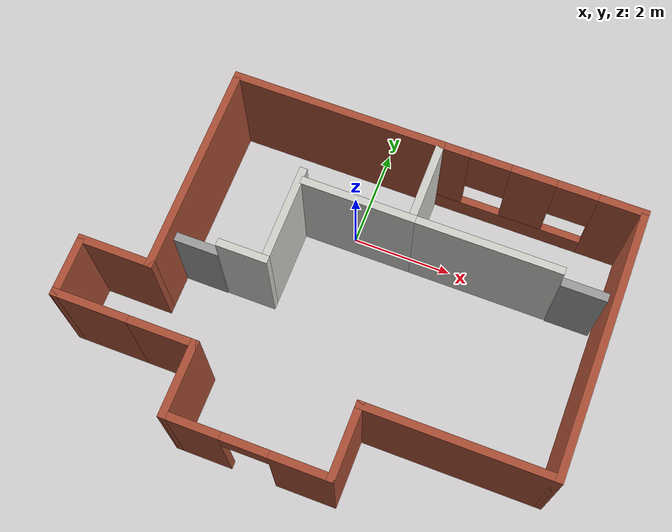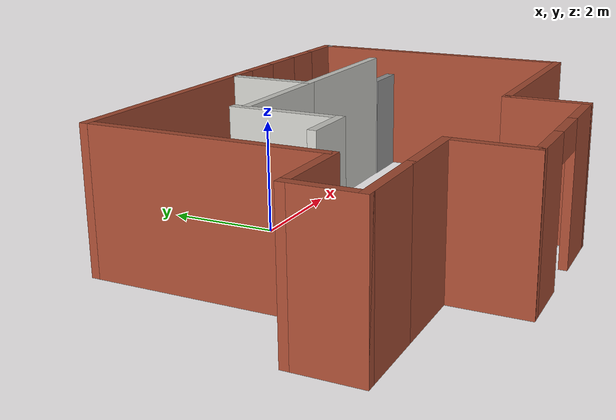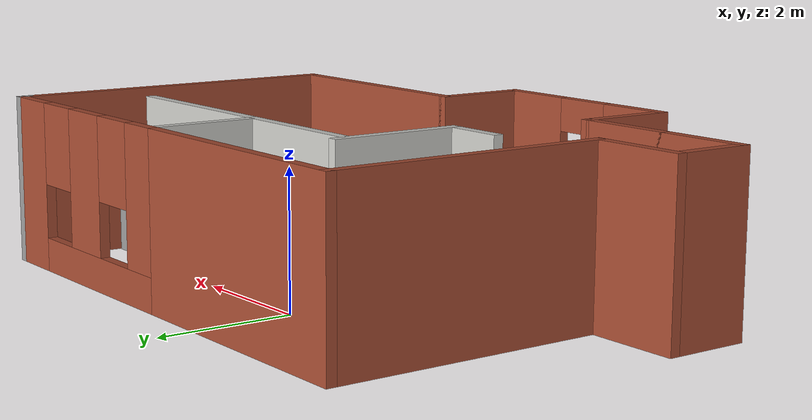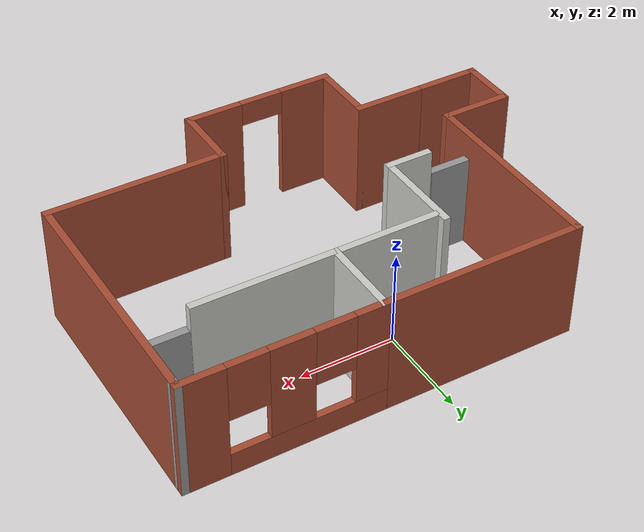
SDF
<?xml version='1.0'?>
<sdf version='1.7'>
  <model name='my_world.world'>
    <pose>0.410865 -1.86702 0 0 -0 0</pose>
    <link name='Door_1'>
      <collision name='Door_1_Collision'>
        <geometry>
          <box>
            <size>0.9 0.17 2</size>
          </box>
        </geometry>
        <pose>0 0 1 0 -0 0</pose>
      </collision>
      <visual name='Door_1_Visual'>
        <pose>0 0 1 0 -0 0</pose>
        <geometry>
          <box>
            <size>0.9 0.17 2</size>
          </box>
        </geometry>
        <material>
          <script>
            <uri>file://media/materials/scripts/gazebo.material</uri>
            <name>Gazebo/Grey</name>
          </script>
        </material>
      </visual>
      <pose>4.14027 1.67101 0 0 -0 0</pose>
    </link>
    <link name='Door_5'>
      <collision name='Door_5_Collision'>
        <geometry>
          <box>
            <size>0.9 0.17 2</size>
          </box>
        </geometry>
        <pose>0 0 1 0 -0 0</pose>
      </collision>
      <visual name='Door_5_Visual'>
        <pose>0 0 1 0 -0 0</pose>
        <geometry>
          <box>
            <size>0.9 0.17 2</size>
          </box>
        </geometry>
        <material>
          <script>
            <uri>file://media/materials/scripts/gazebo.material</uri>
            <name>Gazebo/Grey</name>
          </script>
        </material>
      </visual>
      <pose>-2.84578 -0.011754 0 0 -0 0</pose>
    </link>
    <link name='Wall_38'>
      <collision name='Wall_38_Collision'>
        <geometry>
          <box>
            <size>4.25 0.15 2.5</size>
          </box>
        </geometry>
        <pose>0 0 1.25 0 -0 0</pose>
      </collision>
      <visual name='Wall_38_Visual'>
        <pose>0 0 1.25 0 -0 0</pose>
        <geometry>
          <box>
            <size>4.25 0.15 2.5</size>
          </box>
        </geometry>
        <material>
          <script>
            <uri>file://media/materials/scripts/gazebo.material</uri>
            <name>Gazebo/Bricks</name>
          </script>
          <ambient>1 1 1 1</ambient>
        </material>
        <meta>
          <layer>0</layer>
        </meta>
      </visual>
      <pose>-1.3 3.275 0 0 -0 3.14159</pose>
    </link>
    <link name='Wall_39'>
      <collision name='Wall_39_Collision'>
        <geometry>
          <box>
            <size>4.25 0.15 2.5</size>
          </box>
        </geometry>
        <pose>0 0 1.25 0 -0 0</pose>
      </collision>
      <visual name='Wall_39_Visual'>
        <pose>0 0 1.25 0 -0 0</pose>
        <geometry>
          <box>
            <size>4.25 0.15 2.5</size>
          </box>
        </geometry>
        <material>
          <script>
            <uri>file://media/materials/scripts/gazebo.material</uri>
            <name>Gazebo/Bricks</name>
          </script>
          <ambient>1 1 1 1</ambient>
        </material>
        <meta>
          <layer>0</layer>
        </meta>
      </visual>
      <pose>-3.35 1.225 0 0 -0 -1.5708</pose>
    </link>
    <link name='Wall_40'>
      <collision name='Wall_40_Collision'>
        <geometry>
          <box>
            <size>1.5 0.15 2.5</size>
          </box>
        </geometry>
        <pose>0 0 1.25 0 -0 0</pose>
      </collision>
      <visual name='Wall_40_Visual'>
        <pose>0 0 1.25 0 -0 0</pose>
        <geometry>
          <box>
            <size>1.5 0.15 2.5</size>
          </box>
        </geometry>
        <material>
          <script>
            <uri>file://media/materials/scripts/gazebo.material</uri>
            <name>Gazebo/Bricks</name>
          </script>
          <ambient>1 1 1 1</ambient>
        </material>
        <meta>
          <layer>0</layer>
        </meta>
      </visual>
      <pose>-4.025 -0.825 0 0 -0 3.14159</pose>
    </link>
    <link name='Wall_41'>
      <collision name='Wall_41_Collision'>
        <geometry>
          <box>
            <size>1.25 0.15 2.5</size>
          </box>
        </geometry>
        <pose>0 0 1.25 0 -0 0</pose>
      </collision>
      <visual name='Wall_41_Visual'>
        <pose>0 0 1.25 0 -0 0</pose>
        <geometry>
          <box>
            <size>1.25 0.15 2.5</size>
          </box>
        </geometry>
        <material>
          <script>
            <uri>file://media/materials/scripts/gazebo.material</uri>
            <name>Gazebo/Bricks</name>
          </script>
          <ambient>1 1 1 1</ambient>
        </material>
        <meta>
          <layer>0</layer>
        </meta>
      </visual>
      <pose>-4.7 -1.375 0 0 -0 -1.5708</pose>
    </link>
    <link name='Wall_42'>
      <collision name='Wall_42_Collision'>
        <geometry>
          <box>
            <size>1.5 0.15 2.5</size>
          </box>
        </geometry>
        <pose>0 0 1.25 0 -0 0</pose>
      </collision>
      <visual name='Wall_42_Visual'>
        <pose>0 0 1.25 0 -0 0</pose>
        <geometry>
          <box>
            <size>1.5 0.15 2.5</size>
          </box>
        </geometry>
        <material>
          <script>
            <uri>file://media/materials/scripts/gazebo.material</uri>
            <name>Gazebo/Bricks</name>
          </script>
          <ambient>1 1 1 1</ambient>
        </material>
        <meta>
          <layer>0</layer>
        </meta>
      </visual>
      <pose>-4.025 -1.925 0 0 -0 0</pose>
    </link>
    <link name='Wall_43'>
      <collision name='Wall_43_Collision'>
        <geometry>
          <box>
            <size>1.5 0.15 2.5</size>
          </box>
        </geometry>
        <pose>0 0 1.25 0 -0 0</pose>
      </collision>
      <visual name='Wall_43_Visual'>
        <pose>0 0 1.25 0 -0 0</pose>
        <geometry>
          <box>
            <size>1.5 0.15 2.5</size>
          </box>
        </geometry>
        <material>
          <script>
            <uri>file://media/materials/scripts/gazebo.material</uri>
            <name>Gazebo/Bricks</name>
          </script>
          <ambient>1 1 1 1</ambient>
        </material>
        <meta>
          <layer>0</layer>
        </meta>
      </visual>
      <pose>-2.675 -1.925 0 0 -0 0</pose>
    </link>
    <link name='Wall_44'>
      <collision name='Wall_44_Collision'>
        <geometry>
          <box>
            <size>1.5 0.15 2.5</size>
          </box>
        </geometry>
        <pose>0 0 1.25 0 -0 0</pose>
      </collision>
      <visual name='Wall_44_Visual'>
        <pose>0 0 1.25 0 -0 0</pose>
        <geometry>
          <box>
            <size>1.5 0.15 2.5</size>
          </box>
        </geometry>
        <material>
          <script>
            <uri>file://media/materials/scripts/gazebo.material</uri>
            <name>Gazebo/Bricks</name>
          </script>
          <ambient>1 1 1 1</ambient>
        </material>
        <meta>
          <layer>0</layer>
        </meta>
      </visual>
      <pose>-2 -2.6 0 0 -0 -1.5708</pose>
    </link>
    <link name='Wall_45'>
      <pose>-0.45 -3.275 0 0 -0 0</pose>
      <visual name='Wall_45_Visual_0'>
        <pose>-1.05573 0 1.25 0 -0 0</pose>
        <geometry>
          <box>
            <size>1.13854 0.15 2.5</size>
          </box>
        </geometry>
        <material>
          <script>
            <uri>file://media/materials/scripts/gazebo.material</uri>
            <name>Gazebo/Bricks</name>
          </script>
          <ambient>1 1 1 1</ambient>
        </material>
        <meta>
          <layer>0</layer>
        </meta>
      </visual>
      <collision name='Wall_45_Collision_0'>
        <geometry>
          <box>
            <size>1.13854 0.15 2.5</size>
          </box>
        </geometry>
        <pose>-1.05573 0 1.25 0 -0 0</pose>
      </collision>
      <visual name='Wall_45_Visual_1'>
        <pose>1.01927 0 1.25 0 -0 0</pose>
        <geometry>
          <box>
            <size>1.21146 0.15 2.5</size>
          </box>
        </geometry>
        <material>
          <script>
            <uri>file://media/materials/scripts/gazebo.material</uri>
            <name>Gazebo/Bricks</name>
          </script>
          <ambient>1 1 1 1</ambient>
        </material>
        <meta>
          <layer>0</layer>
        </meta>
      </visual>
      <collision name='Wall_45_Collision_1'>
        <geometry>
          <box>
            <size>1.21146 0.15 2.5</size>
          </box>
        </geometry>
        <pose>1.01927 0 1.25 0 -0 0</pose>
      </collision>
      <visual name='Wall_45_Visual_2'>
        <pose>-0.036456 0 2.25 0 -0 0</pose>
        <geometry>
          <box>
            <size>0.9 0.15 0.5</size>
          </box>
        </geometry>
        <material>
          <script>
            <uri>file://media/materials/scripts/gazebo.material</uri>
            <name>Gazebo/Bricks</name>
          </script>
          <ambient>1 1 1 1</ambient>
        </material>
        <meta>
          <layer>0</layer>
        </meta>
      </visual>
      <collision name='Wall_45_Collision_2'>
        <geometry>
          <box>
            <size>0.9 0.15 0.5</size>
          </box>
        </geometry>
        <pose>-0.036456 0 2.25 0 -0 0</pose>
      </collision>
    </link>
    <link name='Wall_46'>
      <collision name='Wall_46_Collision'>
        <geometry>
          <box>
            <size>1.5 0.15 2.5</size>
          </box>
        </geometry>
        <pose>0 0 1.25 0 -0 0</pose>
      </collision>
      <visual name='Wall_46_Visual'>
        <pose>0 0 1.25 0 -0 0</pose>
        <geometry>
          <box>
            <size>1.5 0.15 2.5</size>
          </box>
        </geometry>
        <material>
          <script>
            <uri>file://media/materials/scripts/gazebo.material</uri>
            <name>Gazebo/Bricks</name>
          </script>
          <ambient>1 1 1 1</ambient>
        </material>
        <meta>
          <layer>0</layer>
        </meta>
      </visual>
      <pose>1.1 -2.6 0 0 -0 1.5708</pose>
    </link>
    <link name='Wall_47'>
      <collision name='Wall_47_Collision'>
        <geometry>
          <box>
            <size>3.75 0.15 2.5</size>
          </box>
        </geometry>
        <pose>0 0 1.25 0 -0 0</pose>
      </collision>
      <visual name='Wall_47_Visual'>
        <pose>0 0 1.25 0 -0 0</pose>
        <geometry>
          <box>
            <size>3.75 0.15 2.5</size>
          </box>
        </geometry>
        <material>
          <script>
            <uri>file://media/materials/scripts/gazebo.material</uri>
            <name>Gazebo/Bricks</name>
          </script>
          <ambient>1 1 1 1</ambient>
        </material>
        <meta>
          <layer>0</layer>
        </meta>
      </visual>
      <pose>2.9 -1.925 0 0 -0 0</pose>
    </link>
    <link name='Wall_48'>
      <collision name='Wall_48_Collision'>
        <geometry>
          <box>
            <size>5.25 0.15 2.5</size>
          </box>
        </geometry>
        <pose>0 0 1.25 0 -0 0</pose>
      </collision>
      <visual name='Wall_48_Visual'>
        <pose>0 0 1.25 0 -0 0</pose>
        <geometry>
          <box>
            <size>5.25 0.15 2.5</size>
          </box>
        </geometry>
        <material>
          <script>
            <uri>file://media/materials/scripts/gazebo.material</uri>
            <name>Gazebo/Bricks</name>
          </script>
          <ambient>1 1 1 1</ambient>
        </material>
        <meta>
          <layer>0</layer>
        </meta>
      </visual>
      <pose>4.7 0.625 0 0 -0 1.5708</pose>
    </link>
    <link name='Wall_49'>
      <collision name='Wall_49_Collision'>
        <geometry>
          <box>
            <size>0.15 0.15 2.5</size>
          </box>
        </geometry>
        <pose>0 0 1.25 0 -0 0</pose>
      </collision>
      <visual name='Wall_49_Visual'>
        <pose>0 0 1.25 0 -0 0</pose>
        <geometry>
          <box>
            <size>0.15 0.15 2.5</size>
          </box>
        </geometry>
        <material>
          <script>
            <uri>file://media/materials/scripts/gazebo.material</uri>
            <name>Gazebo/Grey</name>
          </script>
          <ambient>1 1 1 1</ambient>
        </material>
        <meta>
          <layer>0</layer>
        </meta>
      </visual>
      <pose>4.7 3.175 0 0 -0 0</pose>
    </link>
    <link name='Wall_50'>
      <collision name='Wall_50_Collision'>
        <geometry>
          <box>
            <size>0.25 0.15 2.5</size>
          </box>
        </geometry>
        <pose>0 0 1.25 0 -0 0</pose>
      </collision>
      <visual name='Wall_50_Visual'>
        <pose>0 0 1.25 0 -0 0</pose>
        <geometry>
          <box>
            <size>0.25 0.15 2.5</size>
          </box>
        </geometry>
        <material>
          <script>
            <uri>file://media/materials/scripts/gazebo.material</uri>
            <name>Gazebo/Grey</name>
          </script>
          <ambient>1 1 1 1</ambient>
        </material>
        <meta>
          <layer>0</layer>
        </meta>
      </visual>
      <pose>4.7 3.225 0 0 -0 1.5708</pose>
    </link>
    <link name='Wall_51'>
      <pose>2.725 3.275 0 0 -0 3.14159</pose>
      <visual name='Wall_51_Visual_0'>
        <pose>-1.57381 0 1.25 0 -0 0</pose>
        <geometry>
          <box>
            <size>0.952383 0.15 2.5</size>
          </box>
        </geometry>
        <material>
          <script>
            <uri>file://media/materials/scripts/gazebo.material</uri>
            <name>Gazebo/Bricks</name>
          </script>
          <ambient>1 1 1 1</ambient>
        </material>
        <meta>
          <layer>0</layer>
        </meta>
      </visual>
      <collision name='Wall_51_Collision_0'>
        <geometry>
          <box>
            <size>0.952383 0.15 2.5</size>
          </box>
        </geometry>
        <pose>-1.57381 0 1.25 0 -0 0</pose>
      </collision>
      <visual name='Wall_51_Visual_1'>
        <pose>0.476192 0 0.25 0 -0 0</pose>
        <geometry>
          <box>
            <size>3.14762 0.15 0.5</size>
          </box>
        </geometry>
        <material>
          <script>
            <uri>file://media/materials/scripts/gazebo.material</uri>
            <name>Gazebo/Bricks</name>
          </script>
          <ambient>1 1 1 1</ambient>
        </material>
        <meta>
          <layer>0</layer>
        </meta>
      </visual>
      <collision name='Wall_51_Collision_1'>
        <geometry>
          <box>
            <size>3.14762 0.15 0.5</size>
          </box>
        </geometry>
        <pose>0.476192 0 0.25 0 -0 0</pose>
      </collision>
      <visual name='Wall_51_Visual_2'>
        <pose>0.146651 0 1.5 0 -0 0</pose>
        <geometry>
          <box>
            <size>0.888534 0.15 2</size>
          </box>
        </geometry>
        <material>
          <script>
            <uri>file://media/materials/scripts/gazebo.material</uri>
            <name>Gazebo/Bricks</name>
          </script>
          <ambient>1 1 1 1</ambient>
        </material>
        <meta>
          <layer>0</layer>
        </meta>
      </visual>
      <collision name='Wall_51_Collision_2'>
        <geometry>
          <box>
            <size>0.888534 0.15 2</size>
          </box>
        </geometry>
        <pose>0.146651 0 1.5 0 -0 0</pose>
      </collision>
      <visual name='Wall_51_Visual_3'>
        <pose>1.72046 0 1.5 0 -0 0</pose>
        <geometry>
          <box>
            <size>0.659082 0.15 2</size>
          </box>
        </geometry>
        <material>
          <script>
            <uri>file://media/materials/scripts/gazebo.material</uri>
            <name>Gazebo/Bricks</name>
          </script>
          <ambient>1 1 1 1</ambient>
        </material>
        <meta>
          <layer>0</layer>
        </meta>
      </visual>
      <collision name='Wall_51_Collision_3'>
        <geometry>
          <box>
            <size>0.659082 0.15 2</size>
          </box>
        </geometry>
        <pose>1.72046 0 1.5 0 -0 0</pose>
      </collision>
      <visual name='Wall_51_Visual_4'>
        <pose>-0.697617 0 1.9 0 -0 0</pose>
        <geometry>
          <box>
            <size>0.8 0.15 1.2</size>
          </box>
        </geometry>
        <material>
          <script>
            <uri>file://media/materials/scripts/gazebo.material</uri>
            <name>Gazebo/Bricks</name>
          </script>
          <ambient>1 1 1 1</ambient>
        </material>
        <meta>
          <layer>0</layer>
        </meta>
      </visual>
      <collision name='Wall_51_Collision_4'>
        <geometry>
          <box>
            <size>0.8 0.15 1.2</size>
          </box>
        </geometry>
        <pose>-0.697617 0 1.9 0 -0 0</pose>
      </collision>
      <visual name='Wall_51_Visual_5'>
        <pose>0.990918 0 1.9 0 -0 0</pose>
        <geometry>
          <box>
            <size>0.8 0.15 1.2</size>
          </box>
        </geometry>
        <material>
          <script>
            <uri>file://media/materials/scripts/gazebo.material</uri>
            <name>Gazebo/Bricks</name>
          </script>
          <ambient>1 1 1 1</ambient>
        </material>
        <meta>
          <layer>0</layer>
        </meta>
      </visual>
      <collision name='Wall_51_Collision_5'>
        <geometry>
          <box>
            <size>0.8 0.15 1.2</size>
          </box>
        </geometry>
        <pose>0.990918 0 1.9 0 -0 0</pose>
      </collision>
    </link>
    <link name='Wall_52'>
      <collision name='Wall_52_Collision'>
        <geometry>
          <box>
            <size>1.75 0.15 2.5</size>
          </box>
        </geometry>
        <pose>0 0 1.25 0 -0 0</pose>
      </collision>
      <visual name='Wall_52_Visual'>
        <pose>0 0 1.25 0 -0 0</pose>
        <geometry>
          <box>
            <size>1.75 0.15 2.5</size>
          </box>
        </geometry>
        <material>
          <script>
            <uri>file://media/materials/scripts/gazebo.material</uri>
            <name>Gazebo/CeilingTiled</name>
          </script>
          <ambient>1 1 1 1</ambient>
        </material>
        <meta>
          <layer>0</layer>
        </meta>
      </visual>
      <pose>0.75 2.475 0 0 -0 -1.5708</pose>
    </link>
    <link name='Wall_53'>
      <collision name='Wall_53_Collision'>
        <geometry>
          <box>
            <size>3 0.15 2.5</size>
          </box>
        </geometry>
        <pose>0 0 1.25 0 -0 0</pose>
      </collision>
      <visual name='Wall_53_Visual'>
        <pose>0 0 1.25 0 -0 0</pose>
        <geometry>
          <box>
            <size>3 0.15 2.5</size>
          </box>
        </geometry>
        <material>
          <script>
            <uri>file://media/materials/scripts/gazebo.material</uri>
            <name>Gazebo/CeilingTiled</name>
          </script>
          <ambient>1 1 1 1</ambient>
        </material>
        <meta>
          <layer>0</layer>
        </meta>
      </visual>
      <pose>2.175 1.675 0 0 -0 0</pose>
    </link>
    <link name='Wall_56'>
      <collision name='Wall_56_Collision'>
        <geometry>
          <box>
            <size>2 0.15 2.5</size>
          </box>
        </geometry>
        <pose>0 0 1.25 0 -0 0</pose>
      </collision>
      <visual name='Wall_56_Visual'>
        <pose>0 0 1.25 0 -0 0</pose>
        <geometry>
          <box>
            <size>2 0.15 2.5</size>
          </box>
        </geometry>
        <material>
          <script>
            <uri>file://media/materials/scripts/gazebo.material</uri>
            <name>Gazebo/CeilingTiled</name>
          </script>
          <ambient>1 1 1 1</ambient>
        </material>
        <meta>
          <layer>0</layer>
        </meta>
      </visual>
      <pose>-1.45839 0.913694 0 0 -0 -1.5708</pose>
    </link>
    <link name='Wall_57'>
      <collision name='Wall_57_Collision'>
        <geometry>
          <box>
            <size>1 0.15 2.5</size>
          </box>
        </geometry>
        <pose>0 0 1.25 0 -0 0</pose>
      </collision>
      <visual name='Wall_57_Visual'>
        <pose>0 0 1.25 0 -0 0</pose>
        <geometry>
          <box>
            <size>1 0.15 2.5</size>
          </box>
        </geometry>
        <material>
          <script>
            <uri>file://media/materials/scripts/gazebo.material</uri>
            <name>Gazebo/CeilingTiled</name>
          </script>
          <ambient>1 1 1 1</ambient>
        </material>
        <meta>
          <layer>0</layer>
        </meta>
      </visual>
      <pose>-1.88339 -0.011306 0 0 -0 3.14159</pose>
    </link>
    <link name='Wall_60'>
      <collision name='Wall_60_Collision'>
        <geometry>
          <box>
            <size>2.25 0.15 2.5</size>
          </box>
        </geometry>
        <pose>0 0 1.25 0 -0 0</pose>
      </collision>
      <visual name='Wall_60_Visual'>
        <pose>0 0 1.25 0 -0 0</pose>
        <geometry>
          <box>
            <size>2.25 0.15 2.5</size>
          </box>
        </geometry>
        <material>
          <script>
            <uri>file://media/materials/scripts/gazebo.material</uri>
            <name>Gazebo/CeilingTiled</name>
          </script>
          <ambient>1 1 1 1</ambient>
        </material>
        <meta>
          <layer>0</layer>
        </meta>
      </visual>
      <pose>-0.3 1.675 0 0 -0 3.14159</pose>
    </link>
    <static>1</static>
  </model>
</sdf>
